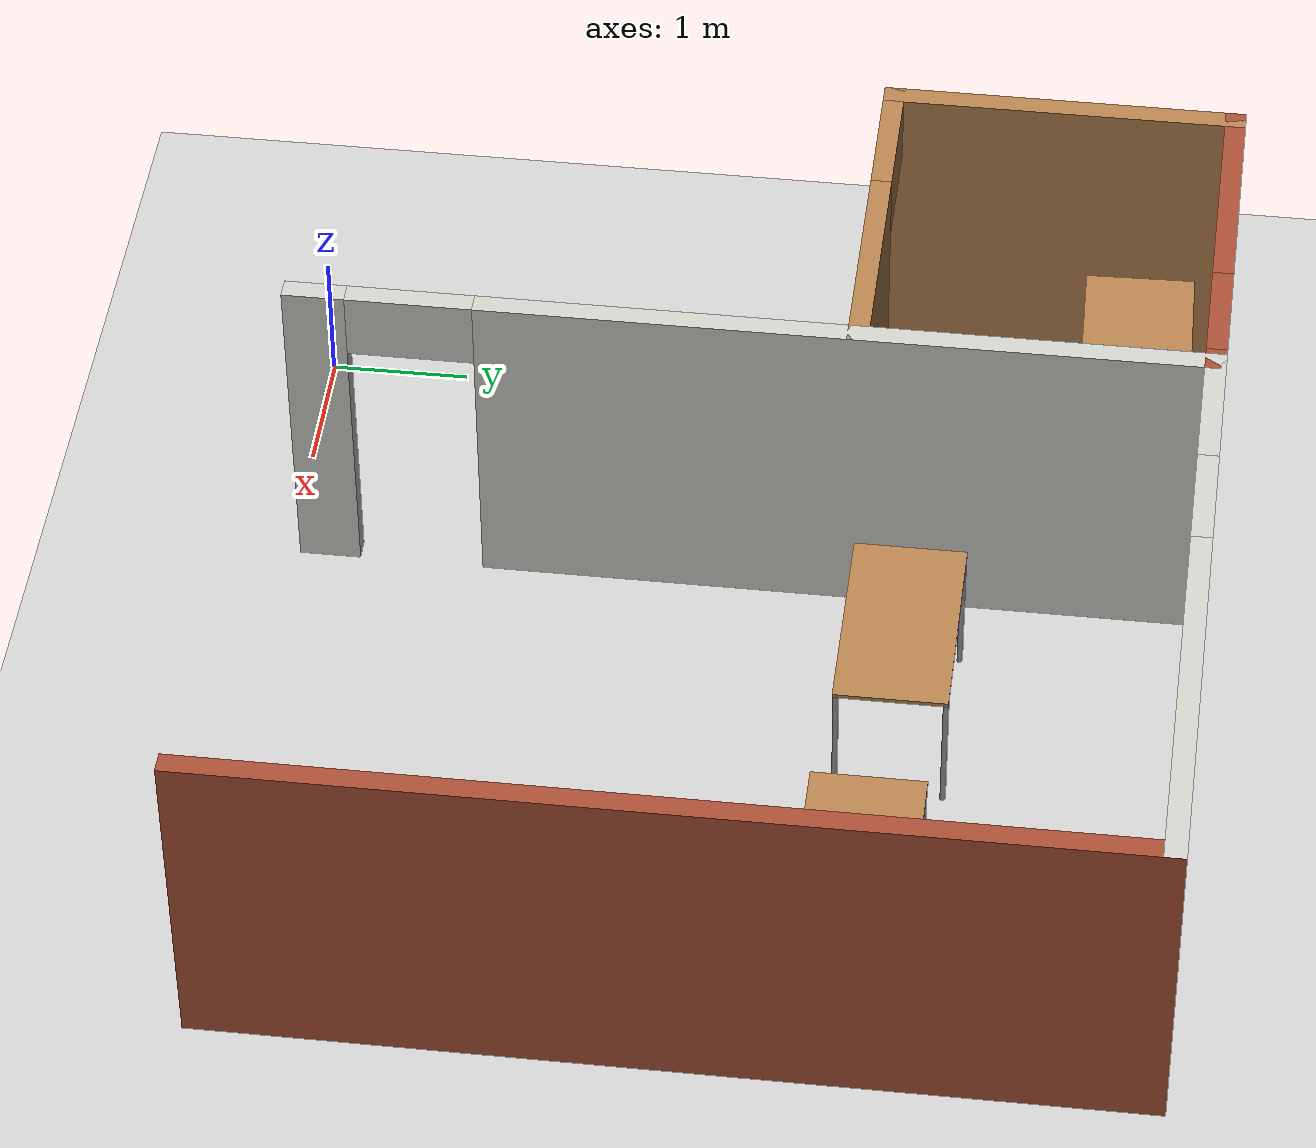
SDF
<sdf version="1.6">
 <world name="default">
  <model name="my_room">
   <link name="Wall_11">
    <pose>1.92516 3.29994 0 0 -0 1.5708</pose>
    <visual name="Wall_11_Visual_2">
     <pose>-2.4 0 2.25 0 -0 0</pose>
     <geometry><box><size>0.9 0.15 0.5</size></box></geometry>
     <material>
      <script><uri>file://media/materials/scripts/gazebo.material</uri><name>Gazebo/CeilingTiled</name></script>
      <ambient>0.435294 0.796078 0.67451 1</ambient>
      <shader type="pixel"/>
      <diffuse>1 1 1 1</diffuse>
      <specular>0 0 0 1</specular>
      <emissive>0 0 0 1</emissive>
     </material>
     <meta><layer>0</layer></meta>
    </visual>
    <visual name="Wall_11_Visual_1">
     <pose>0.67187 0 1.25 0 -0 0</pose>
     <geometry><box><size>5.24375 0.15 2.5</size></box></geometry>
     <material>
      <script><uri>file://media/materials/scripts/gazebo.material</uri><name>Gazebo/CeilingTiled</name></script>
      <ambient>0.435294 0.796078 0.67451 1</ambient>
      <shader type="pixel"/>
      <diffuse>1 1 1 1</diffuse>
      <specular>0 0 0 1</specular>
      <emissive>0 0 0 1</emissive>
     </material>
     <meta><layer>0</layer></meta>
    </visual>
    <visual name="Wall_11_Visual_0">
     <pose>-3.07187 0 1.25 0 -0 0</pose>
     <geometry><box><size>0.443741 0.15 2.5</size></box></geometry>
     <material>
      <script><uri>file://media/materials/scripts/gazebo.material</uri><name>Gazebo/CeilingTiled</name></script>
      <ambient>0.435294 0.796078 0.67451 1</ambient>
      <shader type="pixel"/>
      <diffuse>1 1 1 1</diffuse>
      <specular>0 0 0 1</specular>
      <emissive>0 0 0 1</emissive>
     </material>
     <meta><layer>0</layer></meta>
    </visual>
    <collision name="Wall_11_Collision_1">
     <pose>0.67187 0 1.25 0 -0 0</pose>
     <geometry><box><size>5.24375 0.15 2.5</size></box></geometry>
     <surface>
      <friction>
       <ode><mu>1</mu><mu2>1</mu2><fdir1>0 0 0</fdir1><slip1>0</slip1><slip2>0</slip2></ode>
       <torsional>
        <coefficient>1</coefficient>
        <patch_radius>0</patch_radius>
        <surface_radius>0</surface_radius>
        <use_patch_radius>1</use_patch_radius>
        <ode><slip>0</slip></ode>
       </torsional>
      </friction>
      <bounce><restitution_coefficient>0</restitution_coefficient><threshold>1e+06</threshold></bounce>
      <contact>
       <collide_without_contact>0</collide_without_contact>
       <collide_without_contact_bitmask>1</collide_without_contact_bitmask>
       <collide_bitmask>1</collide_bitmask>
       <ode>
        <soft_cfm>0</soft_cfm>
        <soft_erp>0.2</soft_erp>
        <kp>1e+13</kp>
        <kd>1</kd>
        <max_vel>0.01</max_vel>
        <min_depth>0</min_depth>
       </ode>
       <bullet>
        <split_impulse>1</split_impulse>
        <split_impulse_penetration_threshold>-0.01</split_impulse_penetration_threshold>
        <soft_cfm>0</soft_cfm>
        <soft_erp>0.2</soft_erp>
        <kp>1e+13</kp>
        <kd>1</kd>
       </bullet>
      </contact>
     </surface>
    </collision>
    <collision name="Wall_11_Collision_0">
     <pose>-3.07187 0 1.25 0 -0 0</pose>
     <geometry><box><size>0.443741 0.15 2.5</size></box></geometry>
     <surface>
      <friction>
       <ode><mu>1</mu><mu2>1</mu2><fdir1>0 0 0</fdir1><slip1>0</slip1><slip2>0</slip2></ode>
       <torsional>
        <coefficient>1</coefficient>
        <patch_radius>0</patch_radius>
        <surface_radius>0</surface_radius>
        <use_patch_radius>1</use_patch_radius>
        <ode><slip>0</slip></ode>
       </torsional>
      </friction>
      <bounce><restitution_coefficient>0</restitution_coefficient><threshold>1e+06</threshold></bounce>
      <contact>
       <collide_without_contact>0</collide_without_contact>
       <collide_without_contact_bitmask>1</collide_without_contact_bitmask>
       <collide_bitmask>1</collide_bitmask>
       <ode>
        <soft_cfm>0</soft_cfm>
        <soft_erp>0.2</soft_erp>
        <kp>1e+13</kp>
        <kd>1</kd>
        <max_vel>0.01</max_vel>
        <min_depth>0</min_depth>
       </ode>
       <bullet>
        <split_impulse>1</split_impulse>
        <split_impulse_penetration_threshold>-0.01</split_impulse_penetration_threshold>
        <soft_cfm>0</soft_cfm>
        <soft_erp>0.2</soft_erp>
        <kp>1e+13</kp>
        <kd>1</kd>
       </bullet>
      </contact>
     </surface>
    </collision>
    <collision name="Wall_11_Collision_2">
     <pose>-2.4 0 2.25 0 -0 0</pose>
     <geometry><box><size>0.9 0.15 0.5</size></box></geometry>
     <surface>
      <friction>
       <ode><mu>1</mu><mu2>1</mu2><fdir1>0 0 0</fdir1><slip1>0</slip1><slip2>0</slip2></ode>
       <torsional>
        <coefficient>1</coefficient>
        <patch_radius>0</patch_radius>
        <surface_radius>0</surface_radius>
        <use_patch_radius>1</use_patch_radius>
        <ode><slip>0</slip></ode>
       </torsional>
      </friction>
      <bounce><restitution_coefficient>0</restitution_coefficient><threshold>1e+06</threshold></bounce>
      <contact>
       <collide_without_contact>0</collide_without_contact>
       <collide_without_contact_bitmask>1</collide_without_contact_bitmask>
       <collide_bitmask>1</collide_bitmask>
       <ode>
        <soft_cfm>0</soft_cfm>
        <soft_erp>0.2</soft_erp>
        <kp>1e+13</kp>
        <kd>1</kd>
        <max_vel>0.01</max_vel>
        <min_depth>0</min_depth>
       </ode>
       <bullet>
        <split_impulse>1</split_impulse>
        <split_impulse_penetration_threshold>-0.01</split_impulse_penetration_threshold>
        <soft_cfm>0</soft_cfm>
        <soft_erp>0.2</soft_erp>
        <kp>1e+13</kp>
        <kd>1</kd>
       </bullet>
      </contact>
     </surface>
    </collision>
   </link>
   <link name="Wall_13">
    <pose>4.22516 6.51869 0 0 -0 0</pose>
    <visual name="Wall_13_Visual_0">
     <pose>-1.86124 0 1.25 0 -0 0</pose>
     <geometry><box><size>1.02753 0.15 2.5</size></box></geometry>
     <material>
      <script><uri>file://media/materials/scripts/gazebo.material</uri><name>Gazebo/CeilingTiled</name></script>
      <ambient>0.996078 0.47451 0.0196078 1</ambient>
      <shader type="pixel"/>
      <diffuse>1 1 1 1</diffuse>
      <specular>0 0 0 1</specular>
      <emissive>0 0 0 1</emissive>
     </material>
     <meta><layer>0</layer></meta>
    </visual>
    <visual name="Wall_13_Visual_3">
     <pose>-0.947474 0 1.9 0 -0 0</pose>
     <geometry><box><size>0.8 0.15 1.2</size></box></geometry>
     <material>
      <script><uri>file://media/materials/scripts/gazebo.material</uri><name>Gazebo/CeilingTiled</name></script>
      <ambient>0.996078 0.47451 0.0196078 1</ambient>
      <shader type="pixel"/>
      <diffuse>1 1 1 1</diffuse>
      <specular>0 0 0 1</specular>
      <emissive>0 0 0 1</emissive>
     </material>
     <meta><layer>0</layer></meta>
    </visual>
    <visual name="Wall_13_Visual_2">
     <pose>0.913763 0 1.5 0 -0 0</pose>
     <geometry><box><size>2.92247 0.15 2</size></box></geometry>
     <material>
      <script><uri>file://media/materials/scripts/gazebo.material</uri><name>Gazebo/CeilingTiled</name></script>
      <ambient>0.996078 0.47451 0.0196078 1</ambient>
      <shader type="pixel"/>
      <diffuse>1 1 1 1</diffuse>
      <specular>0 0 0 1</specular>
      <emissive>0 0 0 1</emissive>
     </material>
     <meta><layer>0</layer></meta>
    </visual>
    <visual name="Wall_13_Visual_1">
     <pose>0.513763 0 0.25 0 -0 0</pose>
     <geometry><box><size>3.72247 0.15 0.5</size></box></geometry>
     <material>
      <script><uri>file://media/materials/scripts/gazebo.material</uri><name>Gazebo/CeilingTiled</name></script>
      <ambient>0.996078 0.47451 0.0196078 1</ambient>
      <shader type="pixel"/>
      <diffuse>1 1 1 1</diffuse>
      <specular>0 0 0 1</specular>
      <emissive>0 0 0 1</emissive>
     </material>
     <meta><layer>0</layer></meta>
    </visual>
    <collision name="Wall_13_Collision_1">
     <pose>0.513763 0 0.25 0 -0 0</pose>
     <geometry><box><size>3.72247 0.15 0.5</size></box></geometry>
     <surface>
      <friction>
       <ode><mu>1</mu><mu2>1</mu2><fdir1>0 0 0</fdir1><slip1>0</slip1><slip2>0</slip2></ode>
       <torsional>
        <coefficient>1</coefficient>
        <patch_radius>0</patch_radius>
        <surface_radius>0</surface_radius>
        <use_patch_radius>1</use_patch_radius>
        <ode><slip>0</slip></ode>
       </torsional>
      </friction>
      <bounce><restitution_coefficient>0</restitution_coefficient><threshold>1e+06</threshold></bounce>
      <contact>
       <collide_without_contact>0</collide_without_contact>
       <collide_without_contact_bitmask>1</collide_without_contact_bitmask>
       <collide_bitmask>1</collide_bitmask>
       <ode>
        <soft_cfm>0</soft_cfm>
        <soft_erp>0.2</soft_erp>
        <kp>1e+13</kp>
        <kd>1</kd>
        <max_vel>0.01</max_vel>
        <min_depth>0</min_depth>
       </ode>
       <bullet>
        <split_impulse>1</split_impulse>
        <split_impulse_penetration_threshold>-0.01</split_impulse_penetration_threshold>
        <soft_cfm>0</soft_cfm>
        <soft_erp>0.2</soft_erp>
        <kp>1e+13</kp>
        <kd>1</kd>
       </bullet>
      </contact>
     </surface>
    </collision>
    <collision name="Wall_13_Collision_2">
     <pose>0.913763 0 1.5 0 -0 0</pose>
     <geometry><box><size>2.92247 0.15 2</size></box></geometry>
     <surface>
      <friction>
       <ode><mu>1</mu><mu2>1</mu2><fdir1>0 0 0</fdir1><slip1>0</slip1><slip2>0</slip2></ode>
       <torsional>
        <coefficient>1</coefficient>
        <patch_radius>0</patch_radius>
        <surface_radius>0</surface_radius>
        <use_patch_radius>1</use_patch_radius>
        <ode><slip>0</slip></ode>
       </torsional>
      </friction>
      <bounce><restitution_coefficient>0</restitution_coefficient><threshold>1e+06</threshold></bounce>
      <contact>
       <collide_without_contact>0</collide_without_contact>
       <collide_without_contact_bitmask>1</collide_without_contact_bitmask>
       <collide_bitmask>1</collide_bitmask>
       <ode>
        <soft_cfm>0</soft_cfm>
        <soft_erp>0.2</soft_erp>
        <kp>1e+13</kp>
        <kd>1</kd>
        <max_vel>0.01</max_vel>
        <min_depth>0</min_depth>
       </ode>
       <bullet>
        <split_impulse>1</split_impulse>
        <split_impulse_penetration_threshold>-0.01</split_impulse_penetration_threshold>
        <soft_cfm>0</soft_cfm>
        <soft_erp>0.2</soft_erp>
        <kp>1e+13</kp>
        <kd>1</kd>
       </bullet>
      </contact>
     </surface>
    </collision>
    <collision name="Wall_13_Collision_0">
     <pose>-1.86124 0 1.25 0 -0 0</pose>
     <geometry><box><size>1.02753 0.15 2.5</size></box></geometry>
     <surface>
      <friction>
       <ode><mu>1</mu><mu2>1</mu2><fdir1>0 0 0</fdir1><slip1>0</slip1><slip2>0</slip2></ode>
       <torsional>
        <coefficient>1</coefficient>
        <patch_radius>0</patch_radius>
        <surface_radius>0</surface_radius>
        <use_patch_radius>1</use_patch_radius>
        <ode><slip>0</slip></ode>
       </torsional>
      </friction>
      <bounce><restitution_coefficient>0</restitution_coefficient><threshold>1e+06</threshold></bounce>
      <contact>
       <collide_without_contact>0</collide_without_contact>
       <collide_without_contact_bitmask>1</collide_without_contact_bitmask>
       <collide_bitmask>1</collide_bitmask>
       <ode>
        <soft_cfm>0</soft_cfm>
        <soft_erp>0.2</soft_erp>
        <kp>1e+13</kp>
        <kd>1</kd>
        <max_vel>0.01</max_vel>
        <min_depth>0</min_depth>
       </ode>
       <bullet>
        <split_impulse>1</split_impulse>
        <split_impulse_penetration_threshold>-0.01</split_impulse_penetration_threshold>
        <soft_cfm>0</soft_cfm>
        <soft_erp>0.2</soft_erp>
        <kp>1e+13</kp>
        <kd>1</kd>
       </bullet>
      </contact>
     </surface>
    </collision>
    <collision name="Wall_13_Collision_3">
     <pose>-0.947474 0 1.9 0 -0 0</pose>
     <geometry><box><size>0.8 0.15 1.2</size></box></geometry>
     <surface>
      <friction>
       <ode><mu>1</mu><mu2>1</mu2><fdir1>0 0 0</fdir1><slip1>0</slip1><slip2>0</slip2></ode>
       <torsional>
        <coefficient>1</coefficient>
        <patch_radius>0</patch_radius>
        <surface_radius>0</surface_radius>
        <use_patch_radius>1</use_patch_radius>
        <ode><slip>0</slip></ode>
       </torsional>
      </friction>
      <bounce><restitution_coefficient>0</restitution_coefficient><threshold>1e+06</threshold></bounce>
      <contact>
       <collide_without_contact>0</collide_without_contact>
       <collide_without_contact_bitmask>1</collide_without_contact_bitmask>
       <collide_bitmask>1</collide_bitmask>
       <ode>
        <soft_cfm>0</soft_cfm>
        <soft_erp>0.2</soft_erp>
        <kp>1e+13</kp>
        <kd>1</kd>
        <max_vel>0.01</max_vel>
        <min_depth>0</min_depth>
       </ode>
       <bullet>
        <split_impulse>1</split_impulse>
        <split_impulse_penetration_threshold>-0.01</split_impulse_penetration_threshold>
        <soft_cfm>0</soft_cfm>
        <soft_erp>0.2</soft_erp>
        <kp>1e+13</kp>
        <kd>1</kd>
       </bullet>
      </contact>
     </surface>
    </collision>
   </link>
   <link name="Wall_14">
    <pose>6.52517 3.29994 0 0 0 -1.5708</pose>
    <visual name="Wall_14_Visual">
     <pose>0 0 1.25 0 -0 0</pose>
     <geometry><box><size>6.58749 0.15 2.5</size></box></geometry>
     <material>
      <script><uri>file://media/materials/scripts/gazebo.material</uri><name>Gazebo/Bricks</name></script>
      <ambient>1 1 1 1</ambient>
      <shader type="pixel"/>
      <diffuse>1 1 1 1</diffuse>
      <specular>0.2 0.2 0.2 1</specular>
      <emissive>0 0 0 1</emissive>
     </material>
     <meta><layer>0</layer></meta>
    </visual>
    <collision name="Wall_14_Collision">
     <pose>0 0 1.25 0 -0 0</pose>
     <geometry><box><size>6.58749 0.15 2.5</size></box></geometry>
     <surface>
      <friction>
       <ode><mu>1</mu><mu2>1</mu2><fdir1>0 0 0</fdir1><slip1>0</slip1><slip2>0</slip2></ode>
       <torsional>
        <coefficient>1</coefficient>
        <patch_radius>0</patch_radius>
        <surface_radius>0</surface_radius>
        <use_patch_radius>1</use_patch_radius>
        <ode><slip>0</slip></ode>
       </torsional>
      </friction>
      <bounce><restitution_coefficient>0</restitution_coefficient><threshold>1e+06</threshold></bounce>
      <contact>
       <collide_without_contact>0</collide_without_contact>
       <collide_without_contact_bitmask>1</collide_without_contact_bitmask>
       <collide_bitmask>1</collide_bitmask>
       <ode>
        <soft_cfm>0</soft_cfm>
        <soft_erp>0.2</soft_erp>
        <kp>1e+13</kp>
        <kd>1</kd>
        <max_vel>0.01</max_vel>
        <min_depth>0</min_depth>
       </ode>
       <bullet>
        <split_impulse>1</split_impulse>
        <split_impulse_penetration_threshold>-0.01</split_impulse_penetration_threshold>
        <soft_cfm>0</soft_cfm>
        <soft_erp>0.2</soft_erp>
        <kp>1e+13</kp>
        <kd>1</kd>
       </bullet>
      </contact>
     </surface>
    </collision>
   </link>
   <link name="Wall_16">
    <pose>0.625164 6.51869 0 0 -0 3.14159</pose>
    <visual name="Wall_16_Visual_0">
     <pose>-1.27625 0 1.25 0 -0 0</pose>
     <geometry><box><size>0.197492 0.15 2.5</size></box></geometry>
     <material>
      <script><uri>file://media/materials/scripts/gazebo.material</uri><name>Gazebo/Bricks</name></script>
      <ambient>1 1 1 1</ambient>
      <shader type="pixel"/>
      <diffuse>1 1 1 1</diffuse>
      <specular>0.2 0.2 0.2 1</specular>
      <emissive>0 0 0 1</emissive>
     </material>
     <meta><layer>0</layer></meta>
    </visual>
    <visual name="Wall_16_Visual_1">
     <pose>0.098746 0 0.25 0 -0 0</pose>
     <geometry><box><size>2.55251 0.15 0.5</size></box></geometry>
     <material>
      <script><uri>file://media/materials/scripts/gazebo.material</uri><name>Gazebo/Bricks</name></script>
      <ambient>1 1 1 1</ambient>
      <shader type="pixel"/>
      <diffuse>1 1 1 1</diffuse>
      <specular>0.2 0.2 0.2 1</specular>
      <emissive>0 0 0 1</emissive>
     </material>
     <meta><layer>0</layer></meta>
    </visual>
    <visual name="Wall_16_Visual_2">
     <pose>0.498746 0 1.5 0 -0 0</pose>
     <geometry><box><size>1.75251 0.15 2</size></box></geometry>
     <material>
      <script><uri>file://media/materials/scripts/gazebo.material</uri><name>Gazebo/Bricks</name></script>
      <ambient>1 1 1 1</ambient>
      <shader type="pixel"/>
      <diffuse>1 1 1 1</diffuse>
      <specular>0.2 0.2 0.2 1</specular>
      <emissive>0 0 0 1</emissive>
     </material>
     <meta><layer>0</layer></meta>
    </visual>
    <visual name="Wall_16_Visual_3">
     <pose>-0.777508 0 1.9 0 -0 0</pose>
     <geometry><box><size>0.8 0.15 1.2</size></box></geometry>
     <material>
      <script><uri>file://media/materials/scripts/gazebo.material</uri><name>Gazebo/Bricks</name></script>
      <ambient>1 1 1 1</ambient>
      <shader type="pixel"/>
      <diffuse>1 1 1 1</diffuse>
      <specular>0.2 0.2 0.2 1</specular>
      <emissive>0 0 0 1</emissive>
     </material>
     <meta><layer>0</layer></meta>
    </visual>
    <collision name="Wall_16_Collision_0">
     <pose>-1.27625 0 1.25 0 -0 0</pose>
     <geometry><box><size>0.197492 0.15 2.5</size></box></geometry>
     <surface>
      <friction>
       <ode><mu>1</mu><mu2>1</mu2><fdir1>0 0 0</fdir1><slip1>0</slip1><slip2>0</slip2></ode>
       <torsional>
        <coefficient>1</coefficient>
        <patch_radius>0</patch_radius>
        <surface_radius>0</surface_radius>
        <use_patch_radius>1</use_patch_radius>
        <ode><slip>0</slip></ode>
       </torsional>
      </friction>
      <bounce><restitution_coefficient>0</restitution_coefficient><threshold>1e+06</threshold></bounce>
      <contact>
       <collide_without_contact>0</collide_without_contact>
       <collide_without_contact_bitmask>1</collide_without_contact_bitmask>
       <collide_bitmask>1</collide_bitmask>
       <ode>
        <soft_cfm>0</soft_cfm>
        <soft_erp>0.2</soft_erp>
        <kp>1e+13</kp>
        <kd>1</kd>
        <max_vel>0.01</max_vel>
        <min_depth>0</min_depth>
       </ode>
       <bullet>
        <split_impulse>1</split_impulse>
        <split_impulse_penetration_threshold>-0.01</split_impulse_penetration_threshold>
        <soft_cfm>0</soft_cfm>
        <soft_erp>0.2</soft_erp>
        <kp>1e+13</kp>
        <kd>1</kd>
       </bullet>
      </contact>
     </surface>
    </collision>
    <collision name="Wall_16_Collision_2">
     <pose>0.498746 0 1.5 0 -0 0</pose>
     <geometry><box><size>1.75251 0.15 2</size></box></geometry>
     <surface>
      <friction>
       <ode><mu>1</mu><mu2>1</mu2><fdir1>0 0 0</fdir1><slip1>0</slip1><slip2>0</slip2></ode>
       <torsional>
        <coefficient>1</coefficient>
        <patch_radius>0</patch_radius>
        <surface_radius>0</surface_radius>
        <use_patch_radius>1</use_patch_radius>
        <ode><slip>0</slip></ode>
       </torsional>
      </friction>
      <bounce><restitution_coefficient>0</restitution_coefficient><threshold>1e+06</threshold></bounce>
      <contact>
       <collide_without_contact>0</collide_without_contact>
       <collide_without_contact_bitmask>1</collide_without_contact_bitmask>
       <collide_bitmask>1</collide_bitmask>
       <ode>
        <soft_cfm>0</soft_cfm>
        <soft_erp>0.2</soft_erp>
        <kp>1e+13</kp>
        <kd>1</kd>
        <max_vel>0.01</max_vel>
        <min_depth>0</min_depth>
       </ode>
       <bullet>
        <split_impulse>1</split_impulse>
        <split_impulse_penetration_threshold>-0.01</split_impulse_penetration_threshold>
        <soft_cfm>0</soft_cfm>
        <soft_erp>0.2</soft_erp>
        <kp>1e+13</kp>
        <kd>1</kd>
       </bullet>
      </contact>
     </surface>
    </collision>
    <collision name="Wall_16_Collision_1">
     <pose>0.098746 0 0.25 0 -0 0</pose>
     <geometry><box><size>2.55251 0.15 0.5</size></box></geometry>
     <surface>
      <friction>
       <ode><mu>1</mu><mu2>1</mu2><fdir1>0 0 0</fdir1><slip1>0</slip1><slip2>0</slip2></ode>
       <torsional>
        <coefficient>1</coefficient>
        <patch_radius>0</patch_radius>
        <surface_radius>0</surface_radius>
        <use_patch_radius>1</use_patch_radius>
        <ode><slip>0</slip></ode>
       </torsional>
      </friction>
      <bounce><restitution_coefficient>0</restitution_coefficient><threshold>1e+06</threshold></bounce>
      <contact>
       <collide_without_contact>0</collide_without_contact>
       <collide_without_contact_bitmask>1</collide_without_contact_bitmask>
       <collide_bitmask>1</collide_bitmask>
       <ode>
        <soft_cfm>0</soft_cfm>
        <soft_erp>0.2</soft_erp>
        <kp>1e+13</kp>
        <kd>1</kd>
        <max_vel>0.01</max_vel>
        <min_depth>0</min_depth>
       </ode>
       <bullet>
        <split_impulse>1</split_impulse>
        <split_impulse_penetration_threshold>-0.01</split_impulse_penetration_threshold>
        <soft_cfm>0</soft_cfm>
        <soft_erp>0.2</soft_erp>
        <kp>1e+13</kp>
        <kd>1</kd>
       </bullet>
      </contact>
     </surface>
    </collision>
    <collision name="Wall_16_Collision_3">
     <pose>-0.777508 0 1.9 0 -0 0</pose>
     <geometry><box><size>0.8 0.15 1.2</size></box></geometry>
     <surface>
      <friction>
       <ode><mu>1</mu><mu2>1</mu2><fdir1>0 0 0</fdir1><slip1>0</slip1><slip2>0</slip2></ode>
       <torsional>
        <coefficient>1</coefficient>
        <patch_radius>0</patch_radius>
        <surface_radius>0</surface_radius>
        <use_patch_radius>1</use_patch_radius>
        <ode><slip>0</slip></ode>
       </torsional>
      </friction>
      <bounce><restitution_coefficient>0</restitution_coefficient><threshold>1e+06</threshold></bounce>
      <contact>
       <collide_without_contact>0</collide_without_contact>
       <collide_without_contact_bitmask>1</collide_without_contact_bitmask>
       <collide_bitmask>1</collide_bitmask>
       <ode>
        <soft_cfm>0</soft_cfm>
        <soft_erp>0.2</soft_erp>
        <kp>1e+13</kp>
        <kd>1</kd>
        <max_vel>0.01</max_vel>
        <min_depth>0</min_depth>
       </ode>
       <bullet>
        <split_impulse>1</split_impulse>
        <split_impulse_penetration_threshold>-0.01</split_impulse_penetration_threshold>
        <soft_cfm>0</soft_cfm>
        <soft_erp>0.2</soft_erp>
        <kp>1e+13</kp>
        <kd>1</kd>
       </bullet>
      </contact>
     </surface>
    </collision>
   </link>
   <link name="Wall_26">
    <pose>0.621451 4.04438 0 0 -0 3.14159</pose>
    <visual name="Wall_26_Visual_2">
     <pose>0.778216 0 2.25 0 -0 0</pose>
     <geometry><box><size>0.9 0.15 0.5</size></box></geometry>
     <material>
      <script><uri>file://media/materials/scripts/gazebo.material</uri><name>Gazebo/Wood</name></script>
      <ambient>1 1 1 1</ambient>
      <shader type="pixel"/>
      <diffuse>1 1 1 1</diffuse>
      <specular>0.2 0.2 0.2 1</specular>
      <emissive>0 0 0 1</emissive>
     </material>
     <meta><layer>0</layer></meta>
    </visual>
    <visual name="Wall_26_Visual_1">
     <pose>1.30161 0 1.25 0 -0 0</pose>
     <geometry><box><size>0.146784 0.15 2.5</size></box></geometry>
     <material>
      <script><uri>file://media/materials/scripts/gazebo.material</uri><name>Gazebo/Wood</name></script>
      <ambient>1 1 1 1</ambient>
      <shader type="pixel"/>
      <diffuse>1 1 1 1</diffuse>
      <specular>0.2 0.2 0.2 1</specular>
      <emissive>0 0 0 1</emissive>
     </material>
     <meta><layer>0</layer></meta>
    </visual>
    <visual name="Wall_26_Visual_0">
     <pose>-0.523392 0 1.25 0 -0 0</pose>
     <geometry><box><size>1.70322 0.15 2.5</size></box></geometry>
     <material>
      <script><uri>file://media/materials/scripts/gazebo.material</uri><name>Gazebo/Wood</name></script>
      <ambient>1 1 1 1</ambient>
      <shader type="pixel"/>
      <diffuse>1 1 1 1</diffuse>
      <specular>0.2 0.2 0.2 1</specular>
      <emissive>0 0 0 1</emissive>
     </material>
     <meta><layer>0</layer></meta>
    </visual>
    <collision name="Wall_26_Collision_0">
     <pose>-0.523392 0 1.25 0 -0 0</pose>
     <geometry><box><size>1.70322 0.15 2.5</size></box></geometry>
     <surface>
      <friction>
       <ode><mu>1</mu><mu2>1</mu2><fdir1>0 0 0</fdir1><slip1>0</slip1><slip2>0</slip2></ode>
       <torsional>
        <coefficient>1</coefficient>
        <patch_radius>0</patch_radius>
        <surface_radius>0</surface_radius>
        <use_patch_radius>1</use_patch_radius>
        <ode><slip>0</slip></ode>
       </torsional>
      </friction>
      <bounce><restitution_coefficient>0</restitution_coefficient><threshold>1e+06</threshold></bounce>
      <contact>
       <collide_without_contact>0</collide_without_contact>
       <collide_without_contact_bitmask>1</collide_without_contact_bitmask>
       <collide_bitmask>1</collide_bitmask>
       <ode>
        <soft_cfm>0</soft_cfm>
        <soft_erp>0.2</soft_erp>
        <kp>1e+13</kp>
        <kd>1</kd>
        <max_vel>0.01</max_vel>
        <min_depth>0</min_depth>
       </ode>
       <bullet>
        <split_impulse>1</split_impulse>
        <split_impulse_penetration_threshold>-0.01</split_impulse_penetration_threshold>
        <soft_cfm>0</soft_cfm>
        <soft_erp>0.2</soft_erp>
        <kp>1e+13</kp>
        <kd>1</kd>
       </bullet>
      </contact>
     </surface>
    </collision>
    <collision name="Wall_26_Collision_1">
     <pose>1.30161 0 1.25 0 -0 0</pose>
     <geometry><box><size>0.146784 0.15 2.5</size></box></geometry>
     <surface>
      <friction>
       <ode><mu>1</mu><mu2>1</mu2><fdir1>0 0 0</fdir1><slip1>0</slip1><slip2>0</slip2></ode>
       <torsional>
        <coefficient>1</coefficient>
        <patch_radius>0</patch_radius>
        <surface_radius>0</surface_radius>
        <use_patch_radius>1</use_patch_radius>
        <ode><slip>0</slip></ode>
       </torsional>
      </friction>
      <bounce><restitution_coefficient>0</restitution_coefficient><threshold>1e+06</threshold></bounce>
      <contact>
       <collide_without_contact>0</collide_without_contact>
       <collide_without_contact_bitmask>1</collide_without_contact_bitmask>
       <collide_bitmask>1</collide_bitmask>
       <ode>
        <soft_cfm>0</soft_cfm>
        <soft_erp>0.2</soft_erp>
        <kp>1e+13</kp>
        <kd>1</kd>
        <max_vel>0.01</max_vel>
        <min_depth>0</min_depth>
       </ode>
       <bullet>
        <split_impulse>1</split_impulse>
        <split_impulse_penetration_threshold>-0.01</split_impulse_penetration_threshold>
        <soft_cfm>0</soft_cfm>
        <soft_erp>0.2</soft_erp>
        <kp>1e+13</kp>
        <kd>1</kd>
       </bullet>
      </contact>
     </surface>
    </collision>
    <collision name="Wall_26_Collision_2">
     <pose>0.778216 0 2.25 0 -0 0</pose>
     <geometry><box><size>0.9 0.15 0.5</size></box></geometry>
     <surface>
      <friction>
       <ode><mu>1</mu><mu2>1</mu2><fdir1>0 0 0</fdir1><slip1>0</slip1><slip2>0</slip2></ode>
       <torsional>
        <coefficient>1</coefficient>
        <patch_radius>0</patch_radius>
        <surface_radius>0</surface_radius>
        <use_patch_radius>1</use_patch_radius>
        <ode><slip>0</slip></ode>
       </torsional>
      </friction>
      <bounce><restitution_coefficient>0</restitution_coefficient><threshold>1e+06</threshold></bounce>
      <contact>
       <collide_without_contact>0</collide_without_contact>
       <collide_without_contact_bitmask>1</collide_without_contact_bitmask>
       <collide_bitmask>1</collide_bitmask>
       <ode>
        <soft_cfm>0</soft_cfm>
        <soft_erp>0.2</soft_erp>
        <kp>1e+13</kp>
        <kd>1</kd>
        <max_vel>0.01</max_vel>
        <min_depth>0</min_depth>
       </ode>
       <bullet>
        <split_impulse>1</split_impulse>
        <split_impulse_penetration_threshold>-0.01</split_impulse_penetration_threshold>
        <soft_cfm>0</soft_cfm>
        <soft_erp>0.2</soft_erp>
        <kp>1e+13</kp>
        <kd>1</kd>
       </bullet>
      </contact>
     </surface>
    </collision>
   </link>
   <link name="Wall_33">
    <pose>-0.676692 5.28153 0 0 -0 1.5693</pose>
    <visual name="Wall_33_Visual">
     <pose>0 0 1.25 0 -0 0</pose>
     <geometry><box><size>2.62431 0.15 2.5</size></box></geometry>
     <material>
      <script><uri>file://media/materials/scripts/gazebo.material</uri><name>Gazebo/Wood</name></script>
      <ambient>1 1 1 1</ambient>
      <shader type="pixel"/>
      <diffuse>1 1 1 1</diffuse>
      <specular>0.2 0.2 0.2 1</specular>
      <emissive>0 0 0 1</emissive>
     </material>
     <meta><layer>0</layer></meta>
    </visual>
    <collision name="Wall_33_Collision">
     <pose>0 0 1.25 0 -0 0</pose>
     <geometry><box><size>2.62431 0.15 2.5</size></box></geometry>
     <surface>
      <friction>
       <ode><mu>1</mu><mu2>1</mu2><fdir1>0 0 0</fdir1><slip1>0</slip1><slip2>0</slip2></ode>
       <torsional>
        <coefficient>1</coefficient>
        <patch_radius>0</patch_radius>
        <surface_radius>0</surface_radius>
        <use_patch_radius>1</use_patch_radius>
        <ode><slip>0</slip></ode>
       </torsional>
      </friction>
      <bounce><restitution_coefficient>0</restitution_coefficient><threshold>1e+06</threshold></bounce>
      <contact>
       <collide_without_contact>0</collide_without_contact>
       <collide_without_contact_bitmask>1</collide_without_contact_bitmask>
       <collide_bitmask>1</collide_bitmask>
       <ode>
        <soft_cfm>0</soft_cfm>
        <soft_erp>0.2</soft_erp>
        <kp>1e+13</kp>
        <kd>1</kd>
        <max_vel>0.01</max_vel>
        <min_depth>0</min_depth>
       </ode>
       <bullet>
        <split_impulse>1</split_impulse>
        <split_impulse_penetration_threshold>-0.01</split_impulse_penetration_threshold>
        <soft_cfm>0</soft_cfm>
        <soft_erp>0.2</soft_erp>
        <kp>1e+13</kp>
        <kd>1</kd>
       </bullet>
      </contact>
     </surface>
    </collision>
   </link>
   <static>1</static>
   <pose>0.007918 0.078539 0 0 -0 0</pose>
  </model>
  <model name="table_0">
   <static>1</static>
   <link name="link">
    <collision name="surface">
     <pose>0 0 1 0 -0 0</pose>
     <geometry><box><size>1.5 0.8 0.03</size></box></geometry>
     <surface><friction><ode><mu>0.6</mu><mu2>0.6</mu2></ode></friction></surface>
    </collision>
    <visual name="visual1">
     <pose>0 0 1 0 -0 0</pose>
     <geometry><box><size>1.5 0.8 0.03</size></box></geometry>
     <material>
      <script><uri>file://media/materials/scripts/gazebo.material</uri><name>Gazebo/Wood</name></script>
     </material>
    </visual>
    <collision name="front_left_leg">
     <pose>0.68 0.38 0.5 0 -0 0</pose>
     <geometry><cylinder><radius>0.02</radius><length>1</length></cylinder></geometry>
    </collision>
    <visual name="front_left_leg">
     <pose>0.68 0.38 0.5 0 -0 0</pose>
     <geometry><cylinder><radius>0.02</radius><length>1</length></cylinder></geometry>
     <material>
      <script><uri>file://media/materials/scripts/gazebo.material</uri><name>Gazebo/Grey</name></script>
     </material>
    </visual>
    <collision name="front_right_leg">
     <pose>0.68 -0.38 0.5 0 -0 0</pose>
     <geometry><cylinder><radius>0.02</radius><length>1</length></cylinder></geometry>
    </collision>
    <visual name="front_right_leg">
     <pose>0.68 -0.38 0.5 0 -0 0</pose>
     <geometry><cylinder><radius>0.02</radius><length>1</length></cylinder></geometry>
     <material>
      <script><uri>file://media/materials/scripts/gazebo.material</uri><name>Gazebo/Grey</name></script>
     </material>
    </visual>
    <collision name="back_right_leg">
     <pose>-0.68 -0.38 0.5 0 -0 0</pose>
     <geometry><cylinder><radius>0.02</radius><length>1</length></cylinder></geometry>
    </collision>
    <visual name="back_right_leg">
     <pose>-0.68 -0.38 0.5 0 -0 0</pose>
     <geometry><cylinder><radius>0.02</radius><length>1</length></cylinder></geometry>
     <material>
      <script><uri>file://media/materials/scripts/gazebo.material</uri><name>Gazebo/Grey</name></script>
     </material>
    </visual>
    <collision name="back_left_leg">
     <pose>-0.68 0.38 0.5 0 -0 0</pose>
     <geometry><cylinder><radius>0.02</radius><length>1</length></cylinder></geometry>
    </collision>
    <visual name="back_left_leg">
     <pose>-0.68 0.38 0.5 0 -0 0</pose>
     <geometry><cylinder><radius>0.02</radius><length>1</length></cylinder></geometry>
     <material>
      <script><uri>file://media/materials/scripts/gazebo.material</uri><name>Gazebo/Grey</name></script>
     </material>
    </visual>
   </link>
   <pose>1.07189 3.62236 0 0 -0 0</pose>
  </model>
  <model name="table_2">
   <static>1</static>
   <link name="link">
    <collision name="surface">
     <pose>0 0 1 0 -0 0</pose>
     <geometry><box><size>1.5 0.8 0.03</size></box></geometry>
     <surface><friction><ode><mu>0.6</mu><mu2>0.6</mu2></ode></friction></surface>
    </collision>
    <visual name="visual1">
     <pose>0 0 1 0 -0 0</pose>
     <geometry><box><size>1.5 0.8 0.03</size></box></geometry>
     <material>
      <script><uri>file://media/materials/scripts/gazebo.material</uri><name>Gazebo/Wood</name></script>
     </material>
    </visual>
    <collision name="front_left_leg">
     <pose>0.68 0.38 0.5 0 -0 0</pose>
     <geometry><cylinder><radius>0.02</radius><length>1</length></cylinder></geometry>
    </collision>
    <visual name="front_left_leg">
     <pose>0.68 0.38 0.5 0 -0 0</pose>
     <geometry><cylinder><radius>0.02</radius><length>1</length></cylinder></geometry>
     <material>
      <script><uri>file://media/materials/scripts/gazebo.material</uri><name>Gazebo/Grey</name></script>
     </material>
    </visual>
    <collision name="front_right_leg">
     <pose>0.68 -0.38 0.5 0 -0 0</pose>
     <geometry><cylinder><radius>0.02</radius><length>1</length></cylinder></geometry>
    </collision>
    <visual name="front_right_leg">
     <pose>0.68 -0.38 0.5 0 -0 0</pose>
     <geometry><cylinder><radius>0.02</radius><length>1</length></cylinder></geometry>
     <material>
      <script><uri>file://media/materials/scripts/gazebo.material</uri><name>Gazebo/Grey</name></script>
     </material>
    </visual>
    <collision name="back_right_leg">
     <pose>-0.68 -0.38 0.5 0 -0 0</pose>
     <geometry><cylinder><radius>0.02</radius><length>1</length></cylinder></geometry>
    </collision>
    <visual name="back_right_leg">
     <pose>-0.68 -0.38 0.5 0 -0 0</pose>
     <geometry><cylinder><radius>0.02</radius><length>1</length></cylinder></geometry>
     <material>
      <script><uri>file://media/materials/scripts/gazebo.material</uri><name>Gazebo/Grey</name></script>
     </material>
    </visual>
    <collision name="back_left_leg">
     <pose>-0.68 0.38 0.5 0 -0 0</pose>
     <geometry><cylinder><radius>0.02</radius><length>1</length></cylinder></geometry>
    </collision>
    <visual name="back_left_leg">
     <pose>-0.68 0.38 0.5 0 -0 0</pose>
     <geometry><cylinder><radius>0.02</radius><length>1</length></cylinder></geometry>
     <material>
      <script><uri>file://media/materials/scripts/gazebo.material</uri><name>Gazebo/Grey</name></script>
     </material>
    </visual>
   </link>
   <pose>0.189628 6.01649 0 0 -0 0.028986</pose>
  </model>
  <model name="table_6">
   <static>1</static>
   <link name="link">
    <collision name="surface">
     <pose>0 0 1 0 -0 0</pose>
     <geometry><box><size>1.5 0.8 0.03</size></box></geometry>
     <surface><friction><ode><mu>0.6</mu><mu2>0.6</mu2></ode></friction></surface>
    </collision>
    <visual name="visual1">
     <pose>0 0 1 0 -0 0</pose>
     <geometry><box><size>1.5 0.8 0.03</size></box></geometry>
     <material>
      <script><uri>file://media/materials/scripts/gazebo.material</uri><name>Gazebo/Wood</name></script>
     </material>
    </visual>
    <collision name="front_left_leg">
     <pose>0.68 0.38 0.5 0 -0 0</pose>
     <geometry><cylinder><radius>0.02</radius><length>1</length></cylinder></geometry>
    </collision>
    <visual name="front_left_leg">
     <pose>0.68 0.38 0.5 0 -0 0</pose>
     <geometry><cylinder><radius>0.02</radius><length>1</length></cylinder></geometry>
     <material>
      <script><uri>file://media/materials/scripts/gazebo.material</uri><name>Gazebo/Grey</name></script>
     </material>
    </visual>
    <collision name="front_right_leg">
     <pose>0.68 -0.38 0.5 0 -0 0</pose>
     <geometry><cylinder><radius>0.02</radius><length>1</length></cylinder></geometry>
    </collision>
    <visual name="front_right_leg">
     <pose>0.68 -0.38 0.5 0 -0 0</pose>
     <geometry><cylinder><radius>0.02</radius><length>1</length></cylinder></geometry>
     <material>
      <script><uri>file://media/materials/scripts/gazebo.material</uri><name>Gazebo/Grey</name></script>
     </material>
    </visual>
    <collision name="back_right_leg">
     <pose>-0.68 -0.38 0.5 0 -0 0</pose>
     <geometry><cylinder><radius>0.02</radius><length>1</length></cylinder></geometry>
    </collision>
    <visual name="back_right_leg">
     <pose>-0.68 -0.38 0.5 0 -0 0</pose>
     <geometry><cylinder><radius>0.02</radius><length>1</length></cylinder></geometry>
     <material>
      <script><uri>file://media/materials/scripts/gazebo.material</uri><name>Gazebo/Grey</name></script>
     </material>
    </visual>
    <collision name="back_left_leg">
     <pose>-0.68 0.38 0.5 0 -0 0</pose>
     <geometry><cylinder><radius>0.02</radius><length>1</length></cylinder></geometry>
    </collision>
    <visual name="back_left_leg">
     <pose>-0.68 0.38 0.5 0 -0 0</pose>
     <geometry><cylinder><radius>0.02</radius><length>1</length></cylinder></geometry>
     <material>
      <script><uri>file://media/materials/scripts/gazebo.material</uri><name>Gazebo/Grey</name></script>
     </material>
    </visual>
   </link>
   <pose>5.47624 4.50196 0 0 -0 0</pose>
  </model>
  <model name="table_9">
   <static>1</static>
   <link name="link">
    <collision name="surface">
     <pose>0 0 1 0 -0 0</pose>
     <geometry><box><size>1.5 0.8 0.03</size></box></geometry>
     <surface><friction><ode><mu>0.6</mu><mu2>0.6</mu2></ode></friction></surface>
    </collision>
    <visual name="visual1">
     <pose>0 0 1 0 -0 0</pose>
     <geometry><box><size>1.5 0.8 0.03</size></box></geometry>
     <material>
      <script><uri>file://media/materials/scripts/gazebo.material</uri><name>Gazebo/Wood</name></script>
     </material>
    </visual>
    <collision name="front_left_leg">
     <pose>0.68 0.38 0.5 0 -0 0</pose>
     <geometry><cylinder><radius>0.02</radius><length>1</length></cylinder></geometry>
    </collision>
    <visual name="front_left_leg">
     <pose>0.68 0.38 0.5 0 -0 0</pose>
     <geometry><cylinder><radius>0.02</radius><length>1</length></cylinder></geometry>
     <material>
      <script><uri>file://media/materials/scripts/gazebo.material</uri><name>Gazebo/Grey</name></script>
     </material>
    </visual>
    <collision name="front_right_leg">
     <pose>0.68 -0.38 0.5 0 -0 0</pose>
     <geometry><cylinder><radius>0.02</radius><length>1</length></cylinder></geometry>
    </collision>
    <visual name="front_right_leg">
     <pose>0.68 -0.38 0.5 0 -0 0</pose>
     <geometry><cylinder><radius>0.02</radius><length>1</length></cylinder></geometry>
     <material>
      <script><uri>file://media/materials/scripts/gazebo.material</uri><name>Gazebo/Grey</name></script>
     </material>
    </visual>
    <collision name="back_right_leg">
     <pose>-0.68 -0.38 0.5 0 -0 0</pose>
     <geometry><cylinder><radius>0.02</radius><length>1</length></cylinder></geometry>
    </collision>
    <visual name="back_right_leg">
     <pose>-0.68 -0.38 0.5 0 -0 0</pose>
     <geometry><cylinder><radius>0.02</radius><length>1</length></cylinder></geometry>
     <material>
      <script><uri>file://media/materials/scripts/gazebo.material</uri><name>Gazebo/Grey</name></script>
     </material>
    </visual>
    <collision name="back_left_leg">
     <pose>-0.68 0.38 0.5 0 -0 0</pose>
     <geometry><cylinder><radius>0.02</radius><length>1</length></cylinder></geometry>
    </collision>
    <visual name="back_left_leg">
     <pose>-0.68 0.38 0.5 0 -0 0</pose>
     <geometry><cylinder><radius>0.02</radius><length>1</length></cylinder></geometry>
     <material>
      <script><uri>file://media/materials/scripts/gazebo.material</uri><name>Gazebo/Grey</name></script>
     </material>
    </visual>
   </link>
   <pose>3.23583 4.57321 0 0 -0 0</pose>
  </model>
  <model name="ground_plane">
   <static>1</static>
   <link name="link">
    <collision name="collision">
     <geometry><plane><normal>0 0 1</normal><size>100 100</size></plane></geometry>
     <surface><friction><ode><mu>100</mu><mu2>50</mu2></ode></friction></surface>
    </collision>
    <visual name="visual">
     <cast_shadows>0</cast_shadows>
     <geometry><plane><normal>0 0 1</normal><size>100 100</size></plane></geometry>
     <material>
      <script><uri>file://media/materials/scripts/gazebo.material</uri><name>Gazebo/Grey</name></script>
     </material>
    </visual>
   </link>
   <pose>0.471217 -2.88314 0 0 -0 0</pose>
  </model>
 </world>
</sdf>
